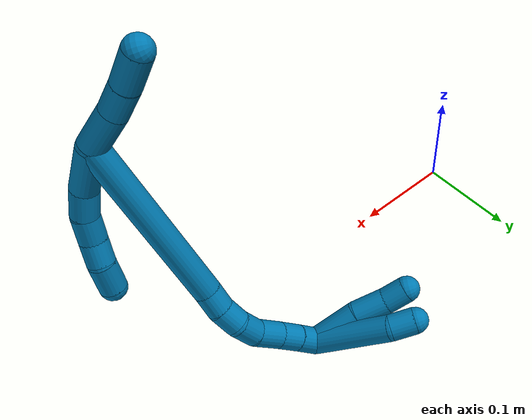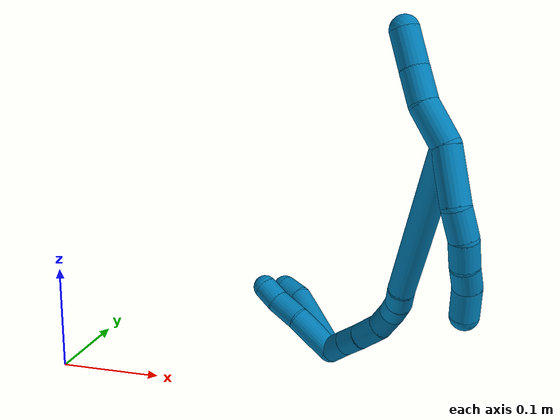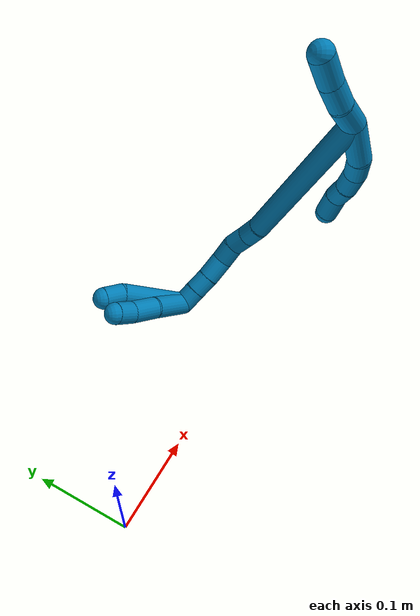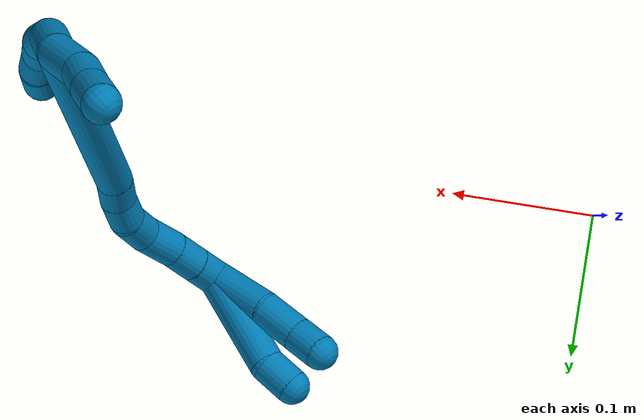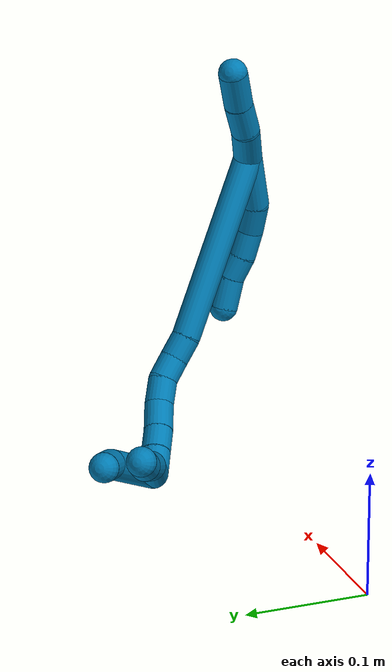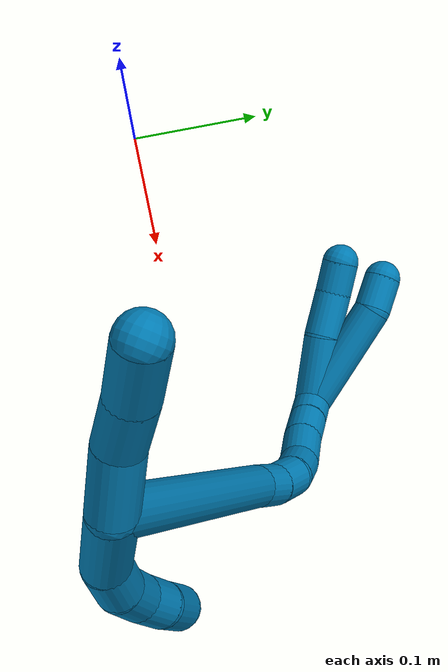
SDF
<sdf version="1.7">
 <world name="default">
  <model name="9">
   <static>0</static>
   <link name="9">
    <collision name="collision-cylinder-e_1_2_8">
     <pose>0.010214 0.01663 0.014331 -0.859507 0.435471 -0.202111</pose>
     <geometry><cylinder><radius>0.0125</radius><length>0.048425</length></cylinder></geometry>
     <surface>
      <friction><ode><mu>1.16</mu><mu2>1.16</mu2><slip1>0</slip1><slip2>0</slip2></ode></friction>
      <contact><ode><kp>1e+06</kp><kd>1</kd><max_vel>0</max_vel><min_depth>0.001</min_depth></ode></contact>
     </surface>
    </collision>
    <visual name="visual-cylinder-e_1_2_8">
     <pose>0.010214 0.01663 0.014331 -0.859507 0.435471 -0.202111</pose>
     <geometry><cylinder><radius>0.0125</radius><length>0.048425</length></cylinder></geometry>
     <material><ambient>0 0.490196 0.709804 1</ambient></material>
    </visual>
    <collision name="collision-cylinder-e_2_8_9">
     <pose>0.023129 0.044742 0.034736 -1.08426 0.205031 -0.123772</pose>
     <geometry><cylinder><radius>0.0125</radius><length>0.026537</length></cylinder></geometry>
     <surface>
      <friction><ode><mu>1.16</mu><mu2>1.16</mu2><slip1>0</slip1><slip2>0</slip2></ode></friction>
      <contact><ode><kp>1e+06</kp><kd>1</kd><max_vel>0</max_vel><min_depth>0.001</min_depth></ode></contact>
     </surface>
    </collision>
    <visual name="visual-cylinder-e_2_8_9">
     <pose>0.023129 0.044742 0.034736 -1.08426 0.205031 -0.123772</pose>
     <geometry><cylinder><radius>0.0125</radius><length>0.026537</length></cylinder></geometry>
     <material><ambient>0 0.490196 0.709804 1</ambient></material>
    </visual>
    <collision name="collision-cylinder-e_3_9_10">
     <pose>0.028491 0.067894 0.043387 -1.35347 0.219112 -0.176257</pose>
     <geometry><cylinder><radius>0.0125</radius><length>0.024484</length></cylinder></geometry>
     <surface>
      <friction><ode><mu>1.16</mu><mu2>1.16</mu2><slip1>0</slip1><slip2>0</slip2></ode></friction>
      <contact><ode><kp>1e+06</kp><kd>1</kd><max_vel>0</max_vel><min_depth>0.001</min_depth></ode></contact>
     </surface>
    </collision>
    <visual name="visual-cylinder-e_3_9_10">
     <pose>0.028491 0.067894 0.043387 -1.35347 0.219112 -0.176257</pose>
     <geometry><cylinder><radius>0.0125</radius><length>0.024484</length></cylinder></geometry>
     <material><ambient>0 0.490196 0.709804 1</ambient></material>
    </visual>
    <collision name="collision-cylinder-e_4_10_11">
     <pose>0.031719 0.090539 0.047403 -1.44034 0.051177 -0.044903</pose>
     <geometry><cylinder><radius>0.0125</radius><length>0.022171</length></cylinder></geometry>
     <surface>
      <friction><ode><mu>1.16</mu><mu2>1.16</mu2><slip1>0</slip1><slip2>0</slip2></ode></friction>
      <contact><ode><kp>1e+06</kp><kd>1</kd><max_vel>0</max_vel><min_depth>0.001</min_depth></ode></contact>
     </surface>
    </collision>
    <visual name="visual-cylinder-e_4_10_11">
     <pose>0.031719 0.090539 0.047403 -1.44034 0.051177 -0.044903</pose>
     <geometry><cylinder><radius>0.0125</radius><length>0.022171</length></cylinder></geometry>
     <material><ambient>0 0.490196 0.709804 1</ambient></material>
    </visual>
    <collision name="collision-cylinder-e_5_11_6">
     <pose>0.036571 0.114922 0.050667 -1.43562 0.306671 -0.268282</pose>
     <geometry><cylinder><radius>0.0125</radius><length>0.028383</length></cylinder></geometry>
     <surface>
      <friction><ode><mu>1.16</mu><mu2>1.16</mu2><slip1>0</slip1><slip2>0</slip2></ode></friction>
      <contact><ode><kp>1e+06</kp><kd>1</kd><max_vel>0</max_vel><min_depth>0.001</min_depth></ode></contact>
     </surface>
    </collision>
    <visual name="visual-cylinder-e_5_11_6">
     <pose>0.036571 0.114922 0.050667 -1.43562 0.306671 -0.268282</pose>
     <geometry><cylinder><radius>0.0125</radius><length>0.028383</length></cylinder></geometry>
     <material><ambient>0 0.490196 0.709804 1</ambient></material>
    </visual>
    <collision name="collision-cylinder-e_1_2_12">
     <pose>-0.003538 -0.01047 -0.015065 2.53424 -0.190526 -0.59193</pose>
     <geometry><cylinder><radius>0.0125</radius><length>0.037367</length></cylinder></geometry>
     <surface>
      <friction><ode><mu>1.16</mu><mu2>1.16</mu2><slip1>0</slip1><slip2>0</slip2></ode></friction>
      <contact><ode><kp>1e+06</kp><kd>1</kd><max_vel>0</max_vel><min_depth>0.001</min_depth></ode></contact>
     </surface>
    </collision>
    <visual name="visual-cylinder-e_1_2_12">
     <pose>-0.003538 -0.01047 -0.015065 2.53424 -0.190526 -0.59193</pose>
     <geometry><cylinder><radius>0.0125</radius><length>0.037367</length></cylinder></geometry>
     <material><ambient>0 0.490196 0.709804 1</ambient></material>
    </visual>
    <collision name="collision-cylinder-e_2_12_13">
     <pose>-0.013029 -0.029434 -0.04066 2.4628 -0.414462 -1.07423</pose>
     <geometry><cylinder><radius>0.0125</radius><length>0.029563</length></cylinder></geometry>
     <surface>
      <friction><ode><mu>1.16</mu><mu2>1.16</mu2><slip1>0</slip1><slip2>0</slip2></ode></friction>
      <contact><ode><kp>1e+06</kp><kd>1</kd><max_vel>0</max_vel><min_depth>0.001</min_depth></ode></contact>
     </surface>
    </collision>
    <visual name="visual-cylinder-e_2_12_13">
     <pose>-0.013029 -0.029434 -0.04066 2.4628 -0.414462 -1.07423</pose>
     <geometry><cylinder><radius>0.0125</radius><length>0.029563</length></cylinder></geometry>
     <material><ambient>0 0.490196 0.709804 1</ambient></material>
    </visual>
    <collision name="collision-cylinder-e_3_13_5">
     <pose>-0.025248 -0.048397 -0.062351 2.38816 -0.388708 -0.923383</pose>
     <geometry><cylinder><radius>0.0125</radius><length>0.03307</length></cylinder></geometry>
     <surface>
      <friction><ode><mu>1.16</mu><mu2>1.16</mu2><slip1>0</slip1><slip2>0</slip2></ode></friction>
      <contact><ode><kp>1e+06</kp><kd>1</kd><max_vel>0</max_vel><min_depth>0.001</min_depth></ode></contact>
     </surface>
    </collision>
    <visual name="visual-cylinder-e_3_13_5">
     <pose>-0.025248 -0.048397 -0.062351 2.38816 -0.388708 -0.923383</pose>
     <geometry><cylinder><radius>0.0125</radius><length>0.03307</length></cylinder></geometry>
     <material><ambient>0 0.490196 0.709804 1</ambient></material>
    </visual>
    <collision name="collision-cylinder-e_1_2_14">
     <pose>0.021697 0.078618 -0.01156 -1.71679 0.26655 -0.307991</pose>
     <geometry><cylinder><radius>0.0125</radius><length>0.164745</length></cylinder></geometry>
     <surface>
      <friction><ode><mu>1.16</mu><mu2>1.16</mu2><slip1>0</slip1><slip2>0</slip2></ode></friction>
      <contact><ode><kp>1e+06</kp><kd>1</kd><max_vel>0</max_vel><min_depth>0.001</min_depth></ode></contact>
     </surface>
    </collision>
    <visual name="visual-cylinder-e_1_2_14">
     <pose>0.021697 0.078618 -0.01156 -1.71679 0.26655 -0.307991</pose>
     <geometry><cylinder><radius>0.0125</radius><length>0.164745</length></cylinder></geometry>
     <material><ambient>0 0.490196 0.709804 1</ambient></material>
    </visual>
    <collision name="collision-cylinder-e_2_14_15">
     <pose>0.044486 0.167761 -0.025088 -1.75564 0.10157 -0.122274</pose>
     <geometry><cylinder><radius>0.0125</radius><length>0.021525</length></cylinder></geometry>
     <surface>
      <friction><ode><mu>1.16</mu><mu2>1.16</mu2><slip1>0</slip1><slip2>0</slip2></ode></friction>
      <contact><ode><kp>1e+06</kp><kd>1</kd><max_vel>0</max_vel><min_depth>0.001</min_depth></ode></contact>
     </surface>
    </collision>
    <visual name="visual-cylinder-e_2_14_15">
     <pose>0.044486 0.167761 -0.025088 -1.75564 0.10157 -0.122274</pose>
     <geometry><cylinder><radius>0.0125</radius><length>0.021525</length></cylinder></geometry>
     <material><ambient>0 0.490196 0.709804 1</ambient></material>
    </visual>
    <collision name="collision-cylinder-e_3_15_16">
     <pose>0.04727 0.18792 -0.031048 -1.96363 0.160945 -0.240265</pose>
     <geometry><cylinder><radius>0.0125</radius><length>0.021132</length></cylinder></geometry>
     <surface>
      <friction><ode><mu>1.16</mu><mu2>1.16</mu2><slip1>0</slip1><slip2>0</slip2></ode></friction>
      <contact><ode><kp>1e+06</kp><kd>1</kd><max_vel>0</max_vel><min_depth>0.001</min_depth></ode></contact>
     </surface>
    </collision>
    <visual name="visual-cylinder-e_3_15_16">
     <pose>0.04727 0.18792 -0.031048 -1.96363 0.160945 -0.240265</pose>
     <geometry><cylinder><radius>0.0125</radius><length>0.021132</length></cylinder></geometry>
     <material><ambient>0 0.490196 0.709804 1</ambient></material>
    </visual>
    <collision name="collision-cylinder-e_4_16_17">
     <pose>0.054393 0.206851 -0.038978 -1.97149 0.493481 -0.726705</pose>
     <geometry><cylinder><radius>0.0125</radius><length>0.022926</length></cylinder></geometry>
     <surface>
      <friction><ode><mu>1.16</mu><mu2>1.16</mu2><slip1>0</slip1><slip2>0</slip2></ode></friction>
      <contact><ode><kp>1e+06</kp><kd>1</kd><max_vel>0</max_vel><min_depth>0.001</min_depth></ode></contact>
     </surface>
    </collision>
    <visual name="visual-cylinder-e_4_16_17">
     <pose>0.054393 0.206851 -0.038978 -1.97149 0.493481 -0.726705</pose>
     <geometry><cylinder><radius>0.0125</radius><length>0.022926</length></cylinder></geometry>
     <material><ambient>0 0.490196 0.709804 1</ambient></material>
    </visual>
    <collision name="collision-cylinder-e_5_17_18">
     <pose>0.067337 0.224241 -0.050325 -2.31198 0.600389 -1.22541</pose>
     <geometry><cylinder><radius>0.0125</radius><length>0.026599</length></cylinder></geometry>
     <surface>
      <friction><ode><mu>1.16</mu><mu2>1.16</mu2><slip1>0</slip1><slip2>0</slip2></ode></friction>
      <contact><ode><kp>1e+06</kp><kd>1</kd><max_vel>0</max_vel><min_depth>0.001</min_depth></ode></contact>
     </surface>
    </collision>
    <visual name="visual-cylinder-e_5_17_18">
     <pose>0.067337 0.224241 -0.050325 -2.31198 0.600389 -1.22541</pose>
     <geometry><cylinder><radius>0.0125</radius><length>0.026599</length></cylinder></geometry>
     <material><ambient>0 0.490196 0.709804 1</ambient></material>
    </visual>
    <collision name="collision-cylinder-e_6_18_19">
     <pose>0.080115 0.238969 -0.064205 -2.34379 0.516613 -1.11983</pose>
     <geometry><cylinder><radius>0.0125</radius><length>0.021314</length></cylinder></geometry>
     <surface>
      <friction><ode><mu>1.16</mu><mu2>1.16</mu2><slip1>0</slip1><slip2>0</slip2></ode></friction>
      <contact><ode><kp>1e+06</kp><kd>1</kd><max_vel>0</max_vel><min_depth>0.001</min_depth></ode></contact>
     </surface>
    </collision>
    <visual name="visual-cylinder-e_6_18_19">
     <pose>0.080115 0.238969 -0.064205 -2.34379 0.516613 -1.11983</pose>
     <geometry><cylinder><radius>0.0125</radius><length>0.021314</length></cylinder></geometry>
     <material><ambient>0 0.490196 0.709804 1</ambient></material>
    </visual>
    <collision name="collision-cylinder-e_7_19_1">
     <pose>0.090866 0.25257 -0.076977 -2.30601 0.528603 -1.09495</pose>
     <geometry><cylinder><radius>0.0125</radius><length>0.021759</length></cylinder></geometry>
     <surface>
      <friction><ode><mu>1.16</mu><mu2>1.16</mu2><slip1>0</slip1><slip2>0</slip2></ode></friction>
      <contact><ode><kp>1e+06</kp><kd>1</kd><max_vel>0</max_vel><min_depth>0.001</min_depth></ode></contact>
     </surface>
    </collision>
    <visual name="visual-cylinder-e_7_19_1">
     <pose>0.090866 0.25257 -0.076977 -2.30601 0.528603 -1.09495</pose>
     <geometry><cylinder><radius>0.0125</radius><length>0.021759</length></cylinder></geometry>
     <material><ambient>0 0.490196 0.709804 1</ambient></material>
    </visual>
    <collision name="collision-cylinder-e_1_1_20">
     <pose>0.086949 0.258122 -0.120481 3.10354 -0.247412 -2.83791</pose>
     <geometry><cylinder><radius>0.0125</radius><length>0.076799</length></cylinder></geometry>
     <surface>
      <friction><ode><mu>1.16</mu><mu2>1.16</mu2><slip1>0</slip1><slip2>0</slip2></ode></friction>
      <contact><ode><kp>1e+06</kp><kd>1</kd><max_vel>0</max_vel><min_depth>0.001</min_depth></ode></contact>
     </surface>
    </collision>
    <visual name="visual-cylinder-e_1_1_20">
     <pose>0.086949 0.258122 -0.120481 3.10354 -0.247412 -2.83791</pose>
     <geometry><cylinder><radius>0.0125</radius><length>0.076799</length></cylinder></geometry>
     <material><ambient>0 0.490196 0.709804 1</ambient></material>
    </visual>
    <collision name="collision-cylinder-e_2_20_4">
     <pose>0.078591 0.256834 -0.169237 -3.13049 0.090289 -2.89706</pose>
     <geometry><cylinder><radius>0.0125</radius><length>0.023201</length></cylinder></geometry>
     <surface>
      <friction><ode><mu>1.16</mu><mu2>1.16</mu2><slip1>0</slip1><slip2>0</slip2></ode></friction>
      <contact><ode><kp>1e+06</kp><kd>1</kd><max_vel>0</max_vel><min_depth>0.001</min_depth></ode></contact>
     </surface>
    </collision>
    <visual name="visual-cylinder-e_2_20_4">
     <pose>0.078591 0.256834 -0.169237 -3.13049 0.090289 -2.89706</pose>
     <geometry><cylinder><radius>0.0125</radius><length>0.023201</length></cylinder></geometry>
     <material><ambient>0 0.490196 0.709804 1</ambient></material>
    </visual>
    <collision name="collision-cylinder-e_1_1_21">
     <pose>0.098224 0.252508 -0.105565 2.83603 0.079913 0.508044</pose>
     <geometry><cylinder><radius>0.0125</radius><length>0.046889</length></cylinder></geometry>
     <surface>
      <friction><ode><mu>1.16</mu><mu2>1.16</mu2><slip1>0</slip1><slip2>0</slip2></ode></friction>
      <contact><ode><kp>1e+06</kp><kd>1</kd><max_vel>0</max_vel><min_depth>0.001</min_depth></ode></contact>
     </surface>
    </collision>
    <visual name="visual-cylinder-e_1_1_21">
     <pose>0.098224 0.252508 -0.105565 2.83603 0.079913 0.508044</pose>
     <geometry><cylinder><radius>0.0125</radius><length>0.046889</length></cylinder></geometry>
     <material><ambient>0 0.490196 0.709804 1</ambient></material>
    </visual>
    <collision name="collision-cylinder-e_2_21_22">
     <pose>0.101417 0.243538 -0.143101 3.01507 0.085731 1.19042</pose>
     <geometry><cylinder><radius>0.0125</radius><length>0.030858</length></cylinder></geometry>
     <surface>
      <friction><ode><mu>1.16</mu><mu2>1.16</mu2><slip1>0</slip1><slip2>0</slip2></ode></friction>
      <contact><ode><kp>1e+06</kp><kd>1</kd><max_vel>0</max_vel><min_depth>0.001</min_depth></ode></contact>
     </surface>
    </collision>
    <visual name="visual-cylinder-e_2_21_22">
     <pose>0.101417 0.243538 -0.143101 3.01507 0.085731 1.19042</pose>
     <geometry><cylinder><radius>0.0125</radius><length>0.030858</length></cylinder></geometry>
     <material><ambient>0 0.490196 0.709804 1</ambient></material>
    </visual>
    <collision name="collision-cylinder-e_3_22_3">
     <pose>0.102814 0.238636 -0.169075 2.87205 0.006816 0.050257</pose>
     <geometry><cylinder><radius>0.0125</radius><length>0.022254</length></cylinder></geometry>
     <surface>
      <friction><ode><mu>1.16</mu><mu2>1.16</mu2><slip1>0</slip1><slip2>0</slip2></ode></friction>
      <contact><ode><kp>1e+06</kp><kd>1</kd><max_vel>0</max_vel><min_depth>0.001</min_depth></ode></contact>
     </surface>
    </collision>
    <visual name="visual-cylinder-e_3_22_3">
     <pose>0.102814 0.238636 -0.169075 2.87205 0.006816 0.050257</pose>
     <geometry><cylinder><radius>0.0125</radius><length>0.022254</length></cylinder></geometry>
     <material><ambient>0 0.490196 0.709804 1</ambient></material>
    </visual>
    <collision name="collision-sphere-3">
     <pose>0.10289 0.235673 -0.1798 0 -0 0</pose>
     <geometry><sphere><radius>0.0125</radius></sphere></geometry>
     <surface>
      <friction><ode><mu>1.16</mu><mu2>1.16</mu2><slip1>0</slip1><slip2>0</slip2></ode></friction>
      <contact><ode><kp>1e+06</kp><kd>1</kd><max_vel>0</max_vel><min_depth>0.001</min_depth></ode></contact>
     </surface>
    </collision>
    <visual name="visual-sphere-3">
     <pose>0.10289 0.235673 -0.1798 0 -0 0</pose>
     <geometry><sphere><radius>0.0125</radius></sphere></geometry>
     <material><ambient>0 0.490196 0.709804 1</ambient></material>
    </visual>
    <collision name="collision-sphere-22">
     <pose>0.102738 0.241599 -0.158351 0 -0 0</pose>
     <geometry><sphere><radius>0.0125</radius></sphere></geometry>
     <surface>
      <friction><ode><mu>1.16</mu><mu2>1.16</mu2><slip1>0</slip1><slip2>0</slip2></ode></friction>
      <contact><ode><kp>1e+06</kp><kd>1</kd><max_vel>0</max_vel><min_depth>0.001</min_depth></ode></contact>
     </surface>
    </collision>
    <visual name="visual-sphere-22">
     <pose>0.102738 0.241599 -0.158351 0 -0 0</pose>
     <geometry><sphere><radius>0.0125</radius></sphere></geometry>
     <material><ambient>0 0.490196 0.709804 1</ambient></material>
    </visual>
    <collision name="collision-sphere-21">
     <pose>0.100096 0.245478 -0.127852 0 -0 0</pose>
     <geometry><sphere><radius>0.0125</radius></sphere></geometry>
     <surface>
      <friction><ode><mu>1.16</mu><mu2>1.16</mu2><slip1>0</slip1><slip2>0</slip2></ode></friction>
      <contact><ode><kp>1e+06</kp><kd>1</kd><max_vel>0</max_vel><min_depth>0.001</min_depth></ode></contact>
     </surface>
    </collision>
    <visual name="visual-sphere-21">
     <pose>0.100096 0.245478 -0.127852 0 -0 0</pose>
     <geometry><sphere><radius>0.0125</radius></sphere></geometry>
     <material><ambient>0 0.490196 0.709804 1</ambient></material>
    </visual>
    <collision name="collision-sphere-4">
     <pose>0.079637 0.256962 -0.18079 0 -0 0</pose>
     <geometry><sphere><radius>0.0125</radius></sphere></geometry>
     <surface>
      <friction><ode><mu>1.16</mu><mu2>1.16</mu2><slip1>0</slip1><slip2>0</slip2></ode></friction>
      <contact><ode><kp>1e+06</kp><kd>1</kd><max_vel>0</max_vel><min_depth>0.001</min_depth></ode></contact>
     </surface>
    </collision>
    <visual name="visual-sphere-4">
     <pose>0.079637 0.256962 -0.18079 0 -0 0</pose>
     <geometry><sphere><radius>0.0125</radius></sphere></geometry>
     <material><ambient>0 0.490196 0.709804 1</ambient></material>
    </visual>
    <collision name="collision-sphere-20">
     <pose>0.077545 0.256706 -0.157684 0 -0 0</pose>
     <geometry><sphere><radius>0.0125</radius></sphere></geometry>
     <surface>
      <friction><ode><mu>1.16</mu><mu2>1.16</mu2><slip1>0</slip1><slip2>0</slip2></ode></friction>
      <contact><ode><kp>1e+06</kp><kd>1</kd><max_vel>0</max_vel><min_depth>0.001</min_depth></ode></contact>
     </surface>
    </collision>
    <visual name="visual-sphere-20">
     <pose>0.077545 0.256706 -0.157684 0 -0 0</pose>
     <geometry><sphere><radius>0.0125</radius></sphere></geometry>
     <material><ambient>0 0.490196 0.709804 1</ambient></material>
    </visual>
    <collision name="collision-sphere-6">
     <pose>0.040855 0.128328 0.05249 0 -0 0</pose>
     <geometry><sphere><radius>0.0125</radius></sphere></geometry>
     <surface>
      <friction><ode><mu>1.16</mu><mu2>1.16</mu2><slip1>0</slip1><slip2>0</slip2></ode></friction>
      <contact><ode><kp>1e+06</kp><kd>1</kd><max_vel>0</max_vel><min_depth>0.001</min_depth></ode></contact>
     </surface>
    </collision>
    <visual name="visual-sphere-6">
     <pose>0.040855 0.128328 0.05249 0 -0 0</pose>
     <geometry><sphere><radius>0.0125</radius></sphere></geometry>
     <material><ambient>0 0.490196 0.709804 1</ambient></material>
    </visual>
    <collision name="collision-sphere-11">
     <pose>0.032286 0.101516 0.048843 0 -0 0</pose>
     <geometry><sphere><radius>0.0125</radius></sphere></geometry>
     <surface>
      <friction><ode><mu>1.16</mu><mu2>1.16</mu2><slip1>0</slip1><slip2>0</slip2></ode></friction>
      <contact><ode><kp>1e+06</kp><kd>1</kd><max_vel>0</max_vel><min_depth>0.001</min_depth></ode></contact>
     </surface>
    </collision>
    <visual name="visual-sphere-11">
     <pose>0.032286 0.101516 0.048843 0 -0 0</pose>
     <geometry><sphere><radius>0.0125</radius></sphere></geometry>
     <material><ambient>0 0.490196 0.709804 1</ambient></material>
    </visual>
    <collision name="collision-sphere-10">
     <pose>0.031152 0.079562 0.045963 0 -0 0</pose>
     <geometry><sphere><radius>0.0125</radius></sphere></geometry>
     <surface>
      <friction><ode><mu>1.16</mu><mu2>1.16</mu2><slip1>0</slip1><slip2>0</slip2></ode></friction>
      <contact><ode><kp>1e+06</kp><kd>1</kd><max_vel>0</max_vel><min_depth>0.001</min_depth></ode></contact>
     </surface>
    </collision>
    <visual name="visual-sphere-10">
     <pose>0.031152 0.079562 0.045963 0 -0 0</pose>
     <geometry><sphere><radius>0.0125</radius></sphere></geometry>
     <material><ambient>0 0.490196 0.709804 1</ambient></material>
    </visual>
    <collision name="collision-sphere-9">
     <pose>0.02583 0.056226 0.04081 0 -0 0</pose>
     <geometry><sphere><radius>0.0125</radius></sphere></geometry>
     <surface>
      <friction><ode><mu>1.16</mu><mu2>1.16</mu2><slip1>0</slip1><slip2>0</slip2></ode></friction>
      <contact><ode><kp>1e+06</kp><kd>1</kd><max_vel>0</max_vel><min_depth>0.001</min_depth></ode></contact>
     </surface>
    </collision>
    <visual name="visual-sphere-9">
     <pose>0.02583 0.056226 0.04081 0 -0 0</pose>
     <geometry><sphere><radius>0.0125</radius></sphere></geometry>
     <material><ambient>0 0.490196 0.709804 1</ambient></material>
    </visual>
    <collision name="collision-sphere-2">
     <geometry><sphere><radius>0.0125</radius></sphere></geometry>
     <surface>
      <friction><ode><mu>1.16</mu><mu2>1.16</mu2><slip1>0</slip1><slip2>0</slip2></ode></friction>
      <contact><ode><kp>1e+06</kp><kd>1</kd><max_vel>0</max_vel><min_depth>0.001</min_depth></ode></contact>
     </surface>
    </collision>
    <visual name="visual-sphere-2">
     <geometry><sphere><radius>0.0125</radius></sphere></geometry>
     <material><ambient>0 0.490196 0.709804 1</ambient></material>
    </visual>
    <collision name="collision-sphere-19">
     <pose>0.085379 0.245603 -0.070675 0 -0 0</pose>
     <geometry><sphere><radius>0.0125</radius></sphere></geometry>
     <surface>
      <friction><ode><mu>1.16</mu><mu2>1.16</mu2><slip1>0</slip1><slip2>0</slip2></ode></friction>
      <contact><ode><kp>1e+06</kp><kd>1</kd><max_vel>0</max_vel><min_depth>0.001</min_depth></ode></contact>
     </surface>
    </collision>
    <visual name="visual-sphere-19">
     <pose>0.085379 0.245603 -0.070675 0 -0 0</pose>
     <geometry><sphere><radius>0.0125</radius></sphere></geometry>
     <material><ambient>0 0.490196 0.709804 1</ambient></material>
    </visual>
    <collision name="collision-sphere-8">
     <pose>0.020427 0.033259 0.028662 0 -0 0</pose>
     <geometry><sphere><radius>0.0125</radius></sphere></geometry>
     <surface>
      <friction><ode><mu>1.16</mu><mu2>1.16</mu2><slip1>0</slip1><slip2>0</slip2></ode></friction>
      <contact><ode><kp>1e+06</kp><kd>1</kd><max_vel>0</max_vel><min_depth>0.001</min_depth></ode></contact>
     </surface>
    </collision>
    <visual name="visual-sphere-8">
     <pose>0.020427 0.033259 0.028662 0 -0 0</pose>
     <geometry><sphere><radius>0.0125</radius></sphere></geometry>
     <material><ambient>0 0.490196 0.709804 1</ambient></material>
    </visual>
    <collision name="collision-sphere-12">
     <pose>-0.007076 -0.020939 -0.030129 0 -0 0</pose>
     <geometry><sphere><radius>0.0125</radius></sphere></geometry>
     <surface>
      <friction><ode><mu>1.16</mu><mu2>1.16</mu2><slip1>0</slip1><slip2>0</slip2></ode></friction>
      <contact><ode><kp>1e+06</kp><kd>1</kd><max_vel>0</max_vel><min_depth>0.001</min_depth></ode></contact>
     </surface>
    </collision>
    <visual name="visual-sphere-12">
     <pose>-0.007076 -0.020939 -0.030129 0 -0 0</pose>
     <geometry><sphere><radius>0.0125</radius></sphere></geometry>
     <material><ambient>0 0.490196 0.709804 1</ambient></material>
    </visual>
    <collision name="collision-sphere-13">
     <pose>-0.018981 -0.037929 -0.051191 0 -0 0</pose>
     <geometry><sphere><radius>0.0125</radius></sphere></geometry>
     <surface>
      <friction><ode><mu>1.16</mu><mu2>1.16</mu2><slip1>0</slip1><slip2>0</slip2></ode></friction>
      <contact><ode><kp>1e+06</kp><kd>1</kd><max_vel>0</max_vel><min_depth>0.001</min_depth></ode></contact>
     </surface>
    </collision>
    <visual name="visual-sphere-13">
     <pose>-0.018981 -0.037929 -0.051191 0 -0 0</pose>
     <geometry><sphere><radius>0.0125</radius></sphere></geometry>
     <material><ambient>0 0.490196 0.709804 1</ambient></material>
    </visual>
    <collision name="collision-sphere-5">
     <pose>-0.031515 -0.058866 -0.073511 0 -0 0</pose>
     <geometry><sphere><radius>0.0125</radius></sphere></geometry>
     <surface>
      <friction><ode><mu>1.16</mu><mu2>1.16</mu2><slip1>0</slip1><slip2>0</slip2></ode></friction>
      <contact><ode><kp>1e+06</kp><kd>1</kd><max_vel>0</max_vel><min_depth>0.001</min_depth></ode></contact>
     </surface>
    </collision>
    <visual name="visual-sphere-5">
     <pose>-0.031515 -0.058866 -0.073511 0 -0 0</pose>
     <geometry><sphere><radius>0.0125</radius></sphere></geometry>
     <material><ambient>0 0.490196 0.709804 1</ambient></material>
    </visual>
    <collision name="collision-sphere-14">
     <pose>0.043395 0.157236 -0.02312 0 -0 0</pose>
     <geometry><sphere><radius>0.0125</radius></sphere></geometry>
     <surface>
      <friction><ode><mu>1.16</mu><mu2>1.16</mu2><slip1>0</slip1><slip2>0</slip2></ode></friction>
      <contact><ode><kp>1e+06</kp><kd>1</kd><max_vel>0</max_vel><min_depth>0.001</min_depth></ode></contact>
     </surface>
    </collision>
    <visual name="visual-sphere-14">
     <pose>0.043395 0.157236 -0.02312 0 -0 0</pose>
     <geometry><sphere><radius>0.0125</radius></sphere></geometry>
     <material><ambient>0 0.490196 0.709804 1</ambient></material>
    </visual>
    <collision name="collision-sphere-15">
     <pose>0.045577 0.178285 -0.027055 0 -0 0</pose>
     <geometry><sphere><radius>0.0125</radius></sphere></geometry>
     <surface>
      <friction><ode><mu>1.16</mu><mu2>1.16</mu2><slip1>0</slip1><slip2>0</slip2></ode></friction>
      <contact><ode><kp>1e+06</kp><kd>1</kd><max_vel>0</max_vel><min_depth>0.001</min_depth></ode></contact>
     </surface>
    </collision>
    <visual name="visual-sphere-15">
     <pose>0.045577 0.178285 -0.027055 0 -0 0</pose>
     <geometry><sphere><radius>0.0125</radius></sphere></geometry>
     <material><ambient>0 0.490196 0.709804 1</ambient></material>
    </visual>
    <collision name="collision-sphere-16">
     <pose>0.048963 0.197555 -0.03504 0 -0 0</pose>
     <geometry><sphere><radius>0.0125</radius></sphere></geometry>
     <surface>
      <friction><ode><mu>1.16</mu><mu2>1.16</mu2><slip1>0</slip1><slip2>0</slip2></ode></friction>
      <contact><ode><kp>1e+06</kp><kd>1</kd><max_vel>0</max_vel><min_depth>0.001</min_depth></ode></contact>
     </surface>
    </collision>
    <visual name="visual-sphere-16">
     <pose>0.048963 0.197555 -0.03504 0 -0 0</pose>
     <geometry><sphere><radius>0.0125</radius></sphere></geometry>
     <material><ambient>0 0.490196 0.709804 1</ambient></material>
    </visual>
    <collision name="collision-sphere-17">
     <pose>0.059823 0.216146 -0.042916 0 -0 0</pose>
     <geometry><sphere><radius>0.0125</radius></sphere></geometry>
     <surface>
      <friction><ode><mu>1.16</mu><mu2>1.16</mu2><slip1>0</slip1><slip2>0</slip2></ode></friction>
      <contact><ode><kp>1e+06</kp><kd>1</kd><max_vel>0</max_vel><min_depth>0.001</min_depth></ode></contact>
     </surface>
    </collision>
    <visual name="visual-sphere-17">
     <pose>0.059823 0.216146 -0.042916 0 -0 0</pose>
     <geometry><sphere><radius>0.0125</radius></sphere></geometry>
     <material><ambient>0 0.490196 0.709804 1</ambient></material>
    </visual>
    <collision name="collision-sphere-18">
     <pose>0.074851 0.232336 -0.057734 0 -0 0</pose>
     <geometry><sphere><radius>0.0125</radius></sphere></geometry>
     <surface>
      <friction><ode><mu>1.16</mu><mu2>1.16</mu2><slip1>0</slip1><slip2>0</slip2></ode></friction>
      <contact><ode><kp>1e+06</kp><kd>1</kd><max_vel>0</max_vel><min_depth>0.001</min_depth></ode></contact>
     </surface>
    </collision>
    <visual name="visual-sphere-18">
     <pose>0.074851 0.232336 -0.057734 0 -0 0</pose>
     <geometry><sphere><radius>0.0125</radius></sphere></geometry>
     <material><ambient>0 0.490196 0.709804 1</ambient></material>
    </visual>
    <collision name="collision-sphere-1">
     <pose>0.096353 0.259538 -0.083278 0 -0 0</pose>
     <geometry><sphere><radius>0.0125</radius></sphere></geometry>
     <surface>
      <friction><ode><mu>1.16</mu><mu2>1.16</mu2><slip1>0</slip1><slip2>0</slip2></ode></friction>
      <contact><ode><kp>1e+06</kp><kd>1</kd><max_vel>0</max_vel><min_depth>0.001</min_depth></ode></contact>
     </surface>
    </collision>
    <visual name="visual-sphere-1">
     <pose>0.096353 0.259538 -0.083278 0 -0 0</pose>
     <geometry><sphere><radius>0.0125</radius></sphere></geometry>
     <material><ambient>0 0.490196 0.709804 1</ambient></material>
    </visual>
    <inertial>
     <pose>0.043964 0.13112 -0.044458 0 -0 0</pose>
     <mass>0.75</mass>
     <inertia>
      <ixx>0.000229</ixx>
      <ixy>0</ixy>
      <ixz>0</ixz>
      <iyy>-9.8e-05</iyy>
      <iyz>0</iyz>
      <izz>-0.000495</izz>
     </inertia>
    </inertial>
   </link>
   <pose>0.365651 -0.043514 0.245639 -1.93068 0.461595 -2.37269</pose>
  </model>
 </world>
</sdf>
